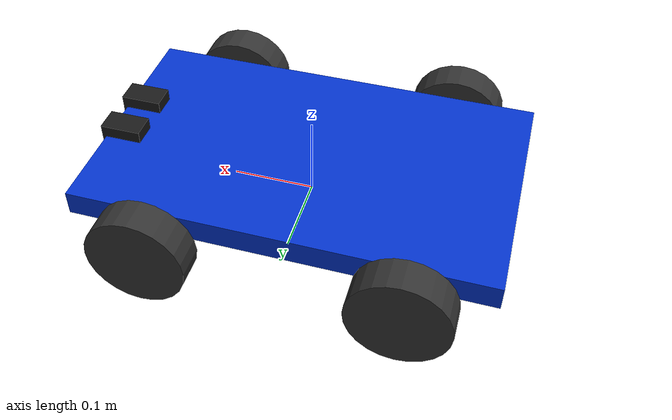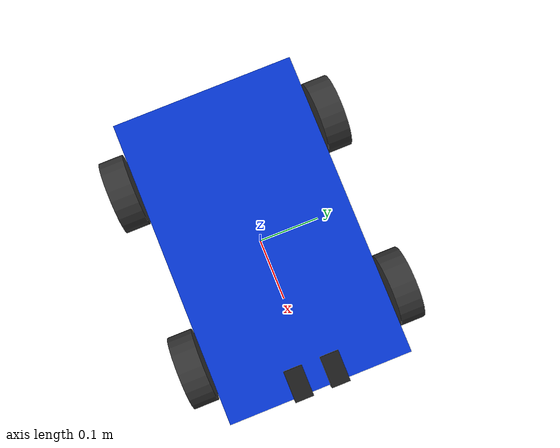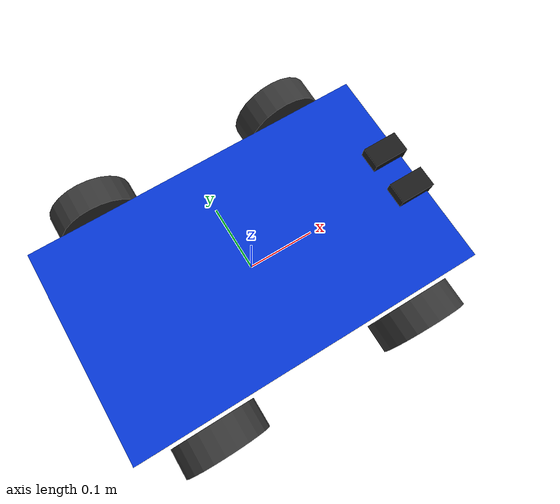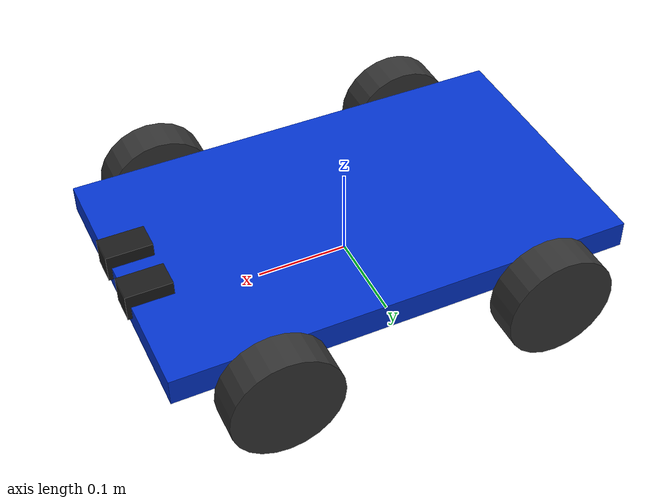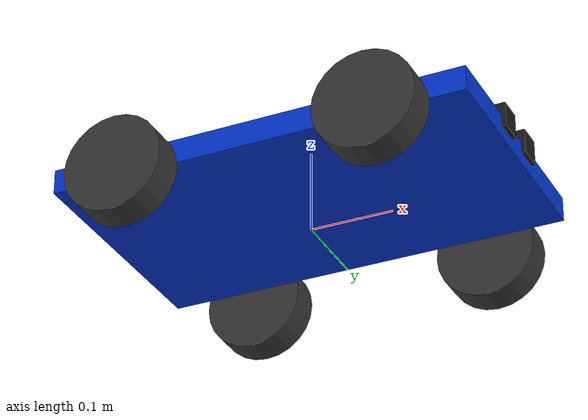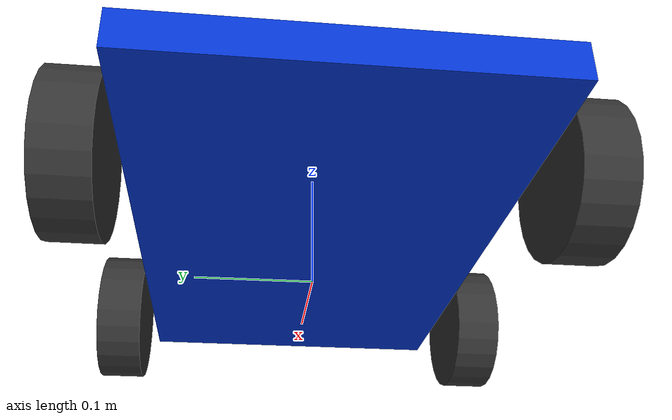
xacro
<?xml version="1.0"?>
<robot name="rover" xmlns:xacro="http://www.ros.org/wiki/xacro">
  <xacro:arg name="namespace" default="" />
  <!-- ========== MATERIAL DEFINITIONS ========== -->
  <material name="blue">
    <color rgba="0.01 0.2 0.8 1.0"/>
  </material>
  <material name="wheel_hub">
    <color rgba="0.2 0.2 0.2 1.0"/>
  </material>

  <!-- ========== GAZEBO MATERIALS ========== -->
  <gazebo reference="base_link">
    <material>Gazebo/Blue</material>
  </gazebo>

  <gazebo reference="front_left_wheel">
       <material>Gazebo/Black</material>
  </gazebo>
  <gazebo reference="front_right_wheel">
       <material>Gazebo/Black</material>
  </gazebo>
  <gazebo reference="rear_left_wheel">
       <material>Gazebo/Black</material>
  </gazebo>
  <gazebo reference="rear_right_wheel">
       <material>Gazebo/Black</material>
  </gazebo>

  <link name="base_footprint"/>

  <joint name="base_footprint_joint" type="fixed">
    <parent link="base_footprint"/>
    <child link="base_link"/>
    <origin xyz="0 0 0.03" rpy="0 0 0"/>
  </joint>

  <!-- ========== MAIN BODY ========== -->
  <link name="base_link">
    <visual>
      <origin xyz="0 0 0.015" rpy="0 0 0"/>
      <geometry>
        <box size="0.5 0.3 0.03"/>
      </geometry>
      <material name="blue"/>
    </visual>
    <collision>
      <origin xyz="0 0 0.015" rpy="0 0 0"/>
      <geometry>
        <box size="0.5 0.3 0.03"/>
      </geometry>
    </collision>
    <inertial>
      <origin xyz="0 0 0.015" rpy="0 0 0"/>
      <mass value="4.0"/>
      <inertia ixx="0.03" iyy="0.08425" izz="0.103" ixy="0.0" ixz="0.0" iyz="0.0"/>
    </inertial>
  </link>

  <!-- ========== WHEELS ========== -->
  <!-- Front Left Wheel -->
  <link name="front_left_wheel">
    <visual>
      <origin xyz="0 0 0.0" rpy="1.570795 0 0"/>
      <geometry>
        <cylinder length="0.04" radius="0.06"/>
      </geometry>
      <material name="wheel_hub"/>
    </visual>
    <collision>
      <origin xyz="0 0 0.0" rpy="1.570795 0 0"/>
      <geometry>
        <cylinder length="0.04" radius="0.06"/>
      </geometry>
    </collision>
    <inertial>
       <mass value="0.1"/>
      <inertia ixx="0.001" ixy="0.0" ixz="0.0" iyy="0.001" iyz="0.0" izz="0.001"/>
    </inertial>
  </link>

  <joint name="front_left_wheel_joint" type="continuous">
    <parent link="base_link"/>
    <child link="front_left_wheel"/>
    <origin xyz="0.15 0.175 -0.01" rpy="0 0 0"/>
    <axis xyz="0 1 0"/>
    <!--limit effort="50.0" velocity="100.0"/-->
  </joint>

  <!-- Front Right Wheel -->
  <link name="front_right_wheel">
    <visual>
      <origin xyz="0 0 0.0" rpy="1.570795 0 0"/>
      <geometry>
        <cylinder length="0.04" radius="0.06"/>
      </geometry>
      <material name="wheel_hub"/>
    </visual>
    <collision>
      <origin xyz="0 0 0.0" rpy="1.570795 0 0"/>
      <geometry>
        <cylinder length="0.04" radius="0.06"/>
        <!--mesh filename="package://rover_project/meshes/model.dae"/-->
      </geometry>
    </collision>
    <inertial>
       <mass value="0.1"/>
      <inertia ixx="0.001" ixy="0.0" ixz="0.0" iyy="0.001" iyz="0.0" izz="0.001"/>
    </inertial>
  </link>

  <joint name="front_right_wheel_joint" type="continuous">
    <parent link="base_link"/>
    <child link="front_right_wheel"/>
    <origin xyz="0.15 -0.175 -0.01" rpy="0 0 0"/>
    <axis xyz="0 1 0"/>
    <!--limit effort="50.0" velocity="100.0"/-->
  </joint>

  <!-- Rear Left Wheel -->
  <link name="rear_left_wheel">
    <visual>
      <origin xyz="0 0 0.0" rpy="1.570795 0 0"/>
      <geometry>
        <cylinder length="0.04" radius="0.06"/>
      </geometry>
      <material name="wheel_hub"/>
    </visual>
    <collision>
      <origin xyz="0 0 0.0" rpy="1.570795 0 0"/>
      <geometry>
        <cylinder length="0.04" radius="0.06"/>
      </geometry>
    </collision>
    <inertial>
       <mass value="0.1"/>
      <inertia ixx="0.001" ixy="0.0" ixz="0.0" iyy="0.001" iyz="0.0" izz="0.001"/>
    </inertial>
  </link>

  <joint name="rear_left_wheel_joint" type="continuous">
    <parent link="base_link"/>
    <child link="rear_left_wheel"/>
    <origin xyz="-0.15 0.175 -0.01" rpy="0 0 0"/>
    <axis xyz="0 1 0"/>
    <!--limit effort="50.0" velocity="100.0"/-->
  </joint>

  <!-- Rear Right Wheel -->
  <link name="rear_right_wheel">
    <visual>
      <origin xyz="0 0 0.0" rpy="1.570795 0 0"/>
      <geometry>
        <cylinder length="0.04" radius="0.06"/>
      </geometry>
      <material name="wheel_hub"/>
    </visual>
    <collision>
      <origin xyz="0 0 0.0" rpy="1.570795 0 0"/>
      <geometry>
        <cylinder length="0.04" radius="0.06"/>
      </geometry>
    </collision>
    <inertial>
       <mass value="0.1"/>
      <inertia ixx="0.001" ixy="0.0" ixz="0.0" iyy="0.001" iyz="0.0" izz="0.001"/>
    </inertial>
  </link>

  <joint name="rear_right_wheel_joint" type="continuous">
    <parent link="base_link"/>
    <child link="rear_right_wheel"/>
    <origin xyz="-0.15 -0.175 -0.01" rpy="0 0 0"/>
    <axis xyz="0 1 0"/>
    <!--limit effort="50.0" velocity="100.0"/-->
  </joint>

  <!-- ========== CAMERA ========== -->
   <link name="camera_left_link">
  <visual>
    <origin xyz="0 -0.03 0.04" rpy="0 0 0"/>
    <geometry>
      <box size="0.05 0.03 0.03"/>   <!-- Camera size -->
    </geometry>
    <material name="camera_black">
      <color rgba="0.1 0.1 0.1 1.0"/>
    </material>
  </visual>

  <collision>
    <origin xyz="0 -0.03 0.04" rpy="0 0 0"/>
    <geometry>
      <box size="0.05 0.03 0.03"/>
    </geometry>
  </collision>

  <inertial>
    <mass value="0.05"/>
    <inertia ixx="0.0001" iyy="0.0001" izz="0.0001" ixy="0" ixz="0" iyz="0"/>
  </inertial>
</link>

<link name="camera_right_link">
  <visual>
    <origin xyz="0 0.03 0.04" rpy="0 0 0"/>
    <geometry>
      <box size="0.05 0.03 0.03"/>
    </geometry>
    <material name="camera_black">
      <color rgba="0.1 0.1 0.1 1.0"/>
    </material>
  </visual>

  <collision>
    <origin xyz="0 -0.03 0.04" rpy="0 0 0"/>
    <geometry>
      <box size="0.05 0.03 0.03"/>
    </geometry>
  </collision>

  <inertial>
    <mass value="0.05"/>
    <inertia ixx="0.0001" iyy="0.0001" izz="0.0001" ixy="0" ixz="0" iyz="0"/>
  </inertial>
</link>

 <link name="camera_left_frame_link"></link>
 <link name="camera_right_frame_link"></link>

 <joint name="base_to_camera_left" type="fixed">
    <parent link="base_link"/>
    <child link="camera_left_link"/>
    <origin xyz="0.23 0.06 -0.01" rpy="0 0 0"/>
  </joint>

  <joint name="camera_left_to_frame" type="fixed">
    <parent link="camera_left_link"/>
    <child link="camera_left_frame_link"/>
    <origin xyz="0 0 0" rpy="${-pi/2} 0 ${-pi/2}"/>
  </joint>

  <joint name="base_to_camera_right" type="fixed">
   <parent link="base_link"/>
   <child link="camera_right_link"/>
   <origin xyz="0.23 -0.06 -0.01" rpy="0 0 0"/>
  </joint>

  <joint name="camera_right_to_frame" type="fixed">
   <parent link="camera_right_link"/>
   <child link="camera_right_frame_link"/>
   <origin xyz="0 0 0" rpy="${-pi/2} 0 ${-pi/2}"/>
  </joint>

  <gazebo reference="camera_left_link">
  <sensor name="left_camera" type="camera">
    <pose> 0 0 0 0 0 0</pose>
    <update_rate>20</update_rate>
    <visualize>true</visualize>
    <camera>
      <horizontal_fov>1</horizontal_fov>
      <image>
        <width>640</width>
        <height>480</height>
        <format>R8G8B8</format>
      </image>
      <clip>
        <near>0.05</near>
        <far>5</far>
      </clip>
    </camera>

    <plugin name="left_rgb_camera" filename="libgazebo_ros_camera.so">
      <frame_name>camera_left_frame_link</frame_name>
      <hack_baseline>0.12</hack_baseline>
      <camera_name>left</camera_name>
    </plugin>
  </sensor>
</gazebo>

<gazebo reference="camera_right_link">
  <sensor name="right_camera" type="camera">
    <pose> 0 0 0 0 0 0</pose>
    <update_rate>20</update_rate>
    <visualize>true</visualize>

    <camera>
      <horizontal_fov>1</horizontal_fov>
      <image>
        <width>640</width>
        <height>480</height>
        <format>R8G8B8</format>
      </image>
      <clip>
        <near>0.05</near>
        <far>5</far>
      </clip>
    </camera>

    <plugin name="right_rgb_camera" filename="libgazebo_ros_camera.so">
      <frame_name>camera_right_frame_link</frame_name>
      <hack_baseline>0.12</hack_baseline>
      <camera_name>right</camera_name>
    </plugin>
  </sensor>
</gazebo>

  <!-- ROS2 Control Hardware Configuration -->
  <ros2_control name="GazeboSystem" type="system">
    <hardware>
      <plugin>gazebo_ros2_control/GazeboSystem</plugin>
    </hardware>
    <joint name="front_left_wheel_joint">
      <command_interface name="velocity"/>
      <state_interface name="position"/>
      <state_interface name="velocity"/>
    </joint>

    <joint name="front_right_wheel_joint">
      <command_interface name="velocity"/>
      <state_interface name="position"/>
      <state_interface name="velocity"/>
    </joint>

    <joint name="rear_left_wheel_joint">
      <command_interface name="velocity"/>
      <state_interface name="position"/>
      <state_interface name="velocity"/>
    </joint>

    <joint name="rear_right_wheel_joint">
      <command_interface name="velocity"/>
      <state_interface name="position"/>
      <state_interface name="velocity"/>
    </joint>
  </ros2_control>

  <!-- Gazebo Plugin to load ros2_control -->
  <gazebo>
    <plugin filename="libgazebo_ros2_control.so" name="gazebo_ros2_control">
    <parameters>$(find w_rover)/config/rover_controllers.yaml</parameters>
      <ros>
        <namespace>$(arg namespace)</namespace>
        <remapping>/diff_drive_controller/cmd_vel_unstamped:=/cmd_vel</remapping>
        <remapping>/diff_drive_controller/odom:=/odom</remapping>
      </ros>

    </plugin>
  </gazebo>

</robot>
